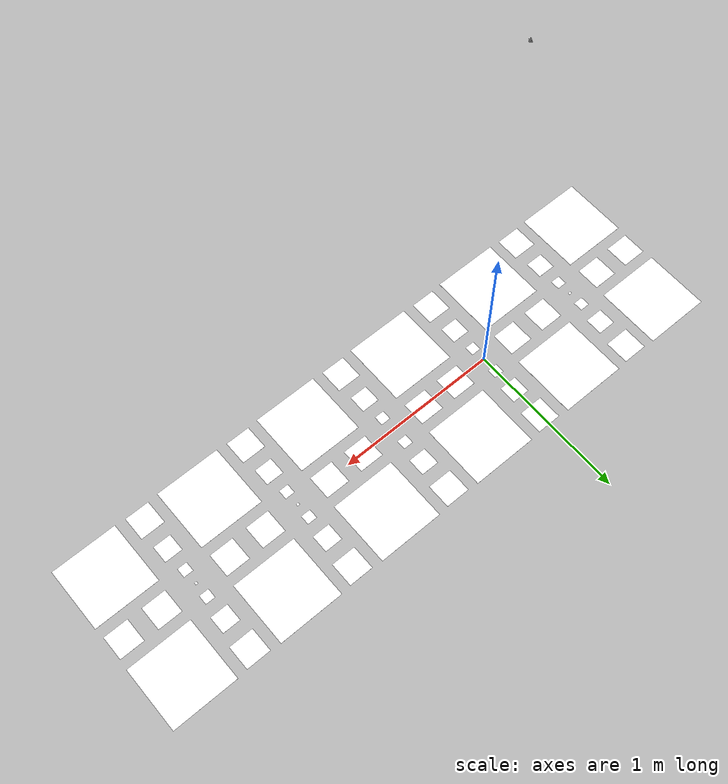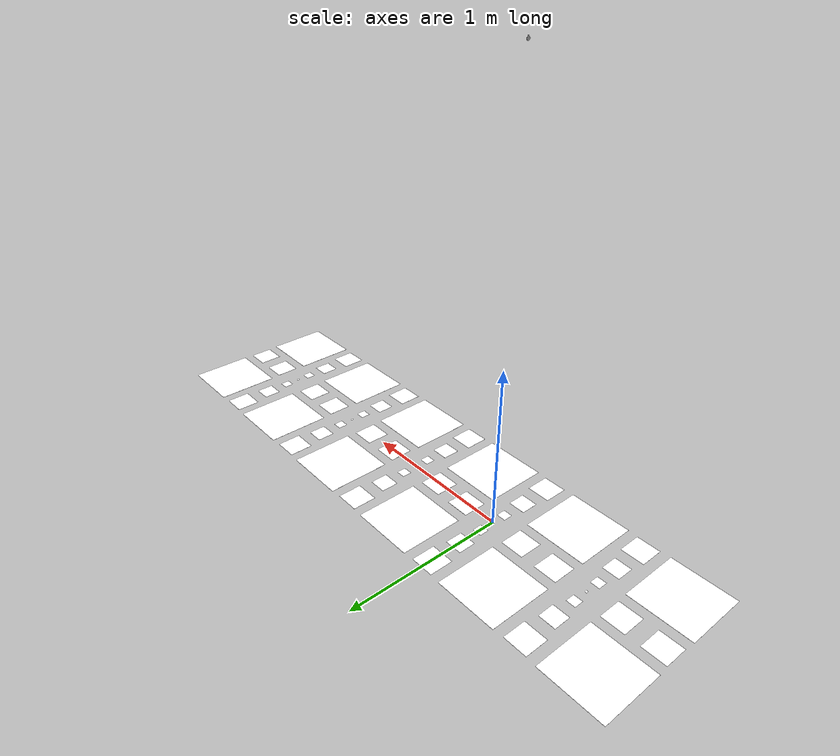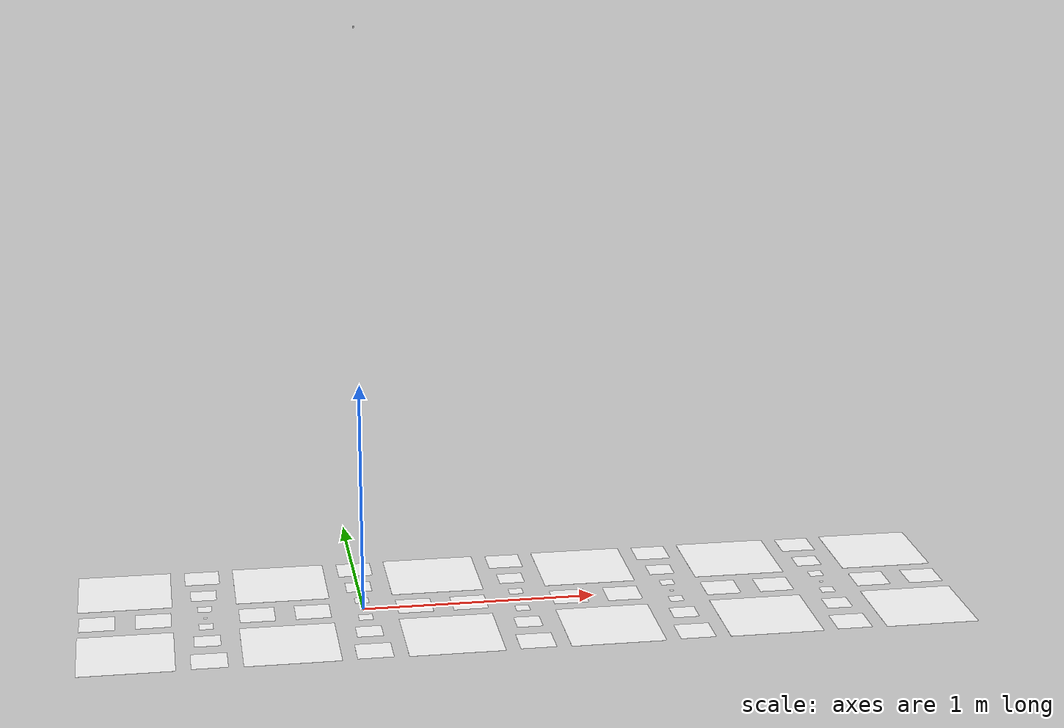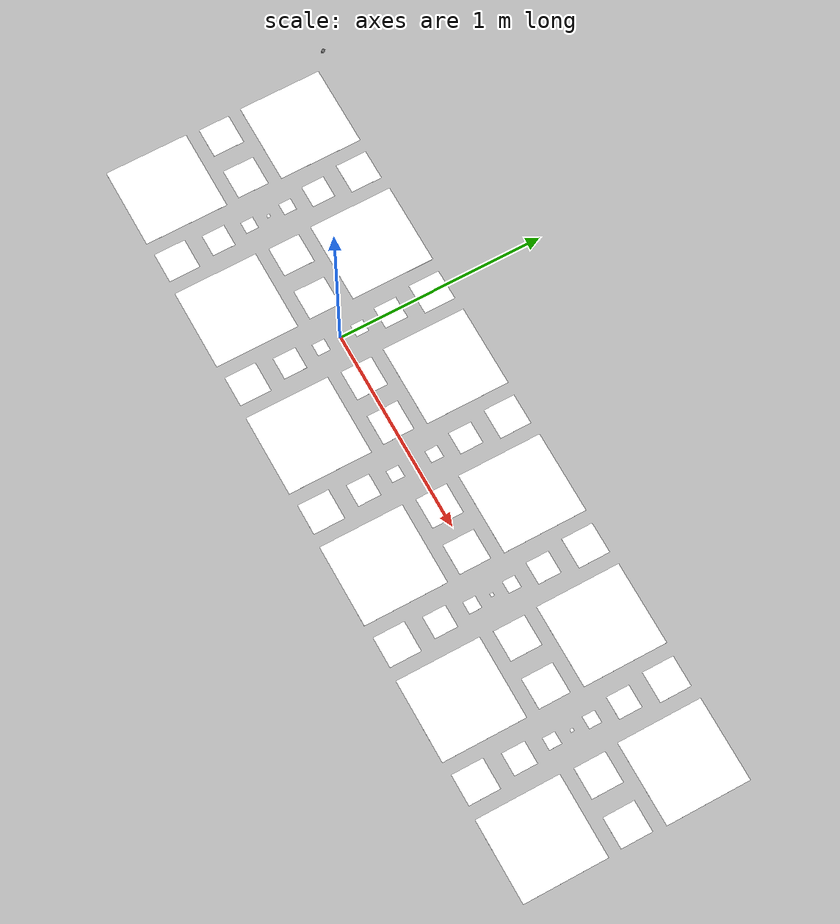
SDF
<?xml version="1.0" encoding="UTF-8"?>
<sdf version="1.9">
  <world name="orange_pi_camera_aruco_test">
    <plugin name="gz::sim::systems::Physics"
            filename="gz-sim-physics-system"/>
    <plugin name="gz::sim::systems::UserCommands"
            filename="gz-sim-user-commands-system"/>
    <plugin name="gz::sim::systems::SceneBroadcaster"
            filename="gz-sim-scene-broadcaster-system"/>
    <plugin name="gz::sim::systems::Sensors"
            filename="gz-sim-sensors-system">
      <render_engine>ogre2</render_engine>
    </plugin>

    <physics type="dart">
      <max_step_size>0.004</max_step_size>
      <real_time_factor>1.0</real_time_factor>
      <real_time_update_rate>250</real_time_update_rate>
    </physics>
    <gravity>0 0 -9.8</gravity>
    <scene>
      <grid>false</grid>
      <ambient>0.4 0.4 0.4 1</ambient>
      <background>0.7 0.7 0.7 1</background>
      <shadows>false</shadows>
    </scene>

    <light name="sun" type="directional">
      <pose>0 0 10 0 0 0</pose>
      <cast_shadows>false</cast_shadows>
      <intensity>1</intensity>
      <direction>0.001 0.625 -0.78</direction>
      <diffuse>0.904 0.904 0.904 1</diffuse>
      <specular>0.271 0.271 0.271 1</specular>
    </light>

    <include>
      <uri>model://obrik_aruco_map_4x4</uri>
    </include>

    <include>
      <uri>model://orange_pi_camera</uri>
      <name>orange_pi_camera_test</name>
      <!-- The camera model looks along local +Z. Roll 180 degrees makes it
           look vertically down at the marker map from 2.5 m. -->
      <pose>0 0 2.5 3.141592653589793 0 0</pose>
      <static>true</static>
    </include>
  </world>
</sdf>

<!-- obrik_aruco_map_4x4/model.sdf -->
<sdf version="1.9">
  <model name="obrik_aruco_map_4x4">
    <static>true</static>
    <link name="link">
        <visual name="marker_1">
          <pose>0.336700 0.336700 0.001000 0.000000 -0.000000 0.000000</pose>
          <cast_shadows>false</cast_shadows>
          <geometry>
            <plane>
              <normal>0 0 1</normal>
              <size>0.400000 0.400000</size>
            </plane>
          </geometry>
          <material>
            <diffuse>1 1 1 1</diffuse>
            <specular>0.1 0.1 0.1 1</specular>
            <pbr>
              <metal>
                <albedo_map>model://obrik_aruco_map_4x4/materials/textures/aruco_1.png</albedo_map>
                <emissive_map>model://obrik_aruco_map_4x4/materials/textures/aruco_1.png</emissive_map>
              </metal>
            </pbr>
          </material>
        </visual>
        <visual name="marker_2">
          <pose>-0.336700 -0.336700 0.001000 0.000000 -0.000000 0.000000</pose>
          <cast_shadows>false</cast_shadows>
          <geometry>
            <plane>
              <normal>0 0 1</normal>
              <size>0.400000 0.400000</size>
            </plane>
          </geometry>
          <material>
            <diffuse>1 1 1 1</diffuse>
            <specular>0.1 0.1 0.1 1</specular>
            <pbr>
              <metal>
                <albedo_map>model://obrik_aruco_map_4x4/materials/textures/aruco_2.png</albedo_map>
                <emissive_map>model://obrik_aruco_map_4x4/materials/textures/aruco_2.png</emissive_map>
              </metal>
            </pbr>
          </material>
        </visual>
        <visual name="marker_3">
          <pose>-0.336700 0.336700 0.001000 0.000000 -0.000000 0.000000</pose>
          <cast_shadows>false</cast_shadows>
          <geometry>
            <plane>
              <normal>0 0 1</normal>
              <size>0.400000 0.400000</size>
            </plane>
          </geometry>
          <material>
            <diffuse>1 1 1 1</diffuse>
            <specular>0.1 0.1 0.1 1</specular>
            <pbr>
              <metal>
                <albedo_map>model://obrik_aruco_map_4x4/materials/textures/aruco_3.png</albedo_map>
                <emissive_map>model://obrik_aruco_map_4x4/materials/textures/aruco_3.png</emissive_map>
              </metal>
            </pbr>
          </material>
        </visual>
        <visual name="marker_4">
          <pose>0.336700 -0.336700 0.001000 0.000000 -0.000000 0.000000</pose>
          <cast_shadows>false</cast_shadows>
          <geometry>
            <plane>
              <normal>0 0 1</normal>
              <size>0.400000 0.400000</size>
            </plane>
          </geometry>
          <material>
            <diffuse>1 1 1 1</diffuse>
            <specular>0.1 0.1 0.1 1</specular>
            <pbr>
              <metal>
                <albedo_map>model://obrik_aruco_map_4x4/materials/textures/aruco_4.png</albedo_map>
                <emissive_map>model://obrik_aruco_map_4x4/materials/textures/aruco_4.png</emissive_map>
              </metal>
            </pbr>
          </material>
        </visual>
        <visual name="marker_5">
          <pose>0.000000 0.095100 0.001000 0.000000 -0.000000 0.000000</pose>
          <cast_shadows>false</cast_shadows>
          <geometry>
            <plane>
              <normal>0 0 1</normal>
              <size>0.060000 0.060000</size>
            </plane>
          </geometry>
          <material>
            <diffuse>1 1 1 1</diffuse>
            <specular>0.1 0.1 0.1 1</specular>
            <pbr>
              <metal>
                <albedo_map>model://obrik_aruco_map_4x4/materials/textures/aruco_5.png</albedo_map>
                <emissive_map>model://obrik_aruco_map_4x4/materials/textures/aruco_5.png</emissive_map>
              </metal>
            </pbr>
          </material>
        </visual>
        <visual name="marker_6">
          <pose>0.000000 -0.095100 0.001000 0.000000 -0.000000 0.000000</pose>
          <cast_shadows>false</cast_shadows>
          <geometry>
            <plane>
              <normal>0 0 1</normal>
              <size>0.060000 0.060000</size>
            </plane>
          </geometry>
          <material>
            <diffuse>1 1 1 1</diffuse>
            <specular>0.1 0.1 0.1 1</specular>
            <pbr>
              <metal>
                <albedo_map>model://obrik_aruco_map_4x4/materials/textures/aruco_6.png</albedo_map>
                <emissive_map>model://obrik_aruco_map_4x4/materials/textures/aruco_6.png</emissive_map>
              </metal>
            </pbr>
          </material>
        </visual>
        <visual name="marker_7">
          <pose>0.000000 0.249500 0.001000 0.000000 -0.000000 0.000000</pose>
          <cast_shadows>false</cast_shadows>
          <geometry>
            <plane>
              <normal>0 0 1</normal>
              <size>0.110000 0.110000</size>
            </plane>
          </geometry>
          <material>
            <diffuse>1 1 1 1</diffuse>
            <specular>0.1 0.1 0.1 1</specular>
            <pbr>
              <metal>
                <albedo_map>model://obrik_aruco_map_4x4/materials/textures/aruco_7.png</albedo_map>
                <emissive_map>model://obrik_aruco_map_4x4/materials/textures/aruco_7.png</emissive_map>
              </metal>
            </pbr>
          </material>
        </visual>
        <visual name="marker_8">
          <pose>0.000000 -0.249500 0.001000 0.000000 -0.000000 0.000000</pose>
          <cast_shadows>false</cast_shadows>
          <geometry>
            <plane>
              <normal>0 0 1</normal>
              <size>0.110000 0.110000</size>
            </plane>
          </geometry>
          <material>
            <diffuse>1 1 1 1</diffuse>
            <specular>0.1 0.1 0.1 1</specular>
            <pbr>
              <metal>
                <albedo_map>model://obrik_aruco_map_4x4/materials/textures/aruco_8.png</albedo_map>
                <emissive_map>model://obrik_aruco_map_4x4/materials/textures/aruco_8.png</emissive_map>
              </metal>
            </pbr>
          </material>
        </visual>
        <visual name="marker_9">
          <pose>0.000000 0.455000 0.001000 0.000000 -0.000000 0.000000</pose>
          <cast_shadows>false</cast_shadows>
          <geometry>
            <plane>
              <normal>0 0 1</normal>
              <size>0.150000 0.150000</size>
            </plane>
          </geometry>
          <material>
            <diffuse>1 1 1 1</diffuse>
            <specular>0.1 0.1 0.1 1</specular>
            <pbr>
              <metal>
                <albedo_map>model://obrik_aruco_map_4x4/materials/textures/aruco_9.png</albedo_map>
                <emissive_map>model://obrik_aruco_map_4x4/materials/textures/aruco_9.png</emissive_map>
              </metal>
            </pbr>
          </material>
        </visual>
        <visual name="marker_10">
          <pose>0.000000 -0.455000 0.001000 0.000000 -0.000000 0.000000</pose>
          <cast_shadows>false</cast_shadows>
          <geometry>
            <plane>
              <normal>0 0 1</normal>
              <size>0.150000 0.150000</size>
            </plane>
          </geometry>
          <material>
            <diffuse>1 1 1 1</diffuse>
            <specular>0.1 0.1 0.1 1</specular>
            <pbr>
              <metal>
                <albedo_map>model://obrik_aruco_map_4x4/materials/textures/aruco_10.png</albedo_map>
                <emissive_map>model://obrik_aruco_map_4x4/materials/textures/aruco_10.png</emissive_map>
              </metal>
            </pbr>
          </material>
        </visual>
        <visual name="marker_11">
          <pose>0.455000 0.000000 0.001000 0.000000 -0.000000 0.000000</pose>
          <cast_shadows>false</cast_shadows>
          <geometry>
            <plane>
              <normal>0 0 1</normal>
              <size>0.150000 0.150000</size>
            </plane>
          </geometry>
          <material>
            <diffuse>1 1 1 1</diffuse>
            <specular>0.1 0.1 0.1 1</specular>
            <pbr>
              <metal>
                <albedo_map>model://obrik_aruco_map_4x4/materials/textures/aruco_11.png</albedo_map>
                <emissive_map>model://obrik_aruco_map_4x4/materials/textures/aruco_11.png</emissive_map>
              </metal>
            </pbr>
          </material>
        </visual>
        <visual name="marker_12">
          <pose>0.218400 0.000000 0.001000 0.000000 -0.000000 0.000000</pose>
          <cast_shadows>false</cast_shadows>
          <geometry>
            <plane>
              <normal>0 0 1</normal>
              <size>0.150000 0.150000</size>
            </plane>
          </geometry>
          <material>
            <diffuse>1 1 1 1</diffuse>
            <specular>0.1 0.1 0.1 1</specular>
            <pbr>
              <metal>
                <albedo_map>model://obrik_aruco_map_4x4/materials/textures/aruco_12.png</albedo_map>
                <emissive_map>model://obrik_aruco_map_4x4/materials/textures/aruco_12.png</emissive_map>
              </metal>
            </pbr>
          </material>
        </visual>
        <visual name="marker_13">
          <pose>-0.455000 0.000000 0.001000 0.000000 -0.000000 0.000000</pose>
          <cast_shadows>false</cast_shadows>
          <geometry>
            <plane>
              <normal>0 0 1</normal>
              <size>0.150000 0.150000</size>
            </plane>
          </geometry>
          <material>
            <diffuse>1 1 1 1</diffuse>
            <specular>0.1 0.1 0.1 1</specular>
            <pbr>
              <metal>
                <albedo_map>model://obrik_aruco_map_4x4/materials/textures/aruco_13.png</albedo_map>
                <emissive_map>model://obrik_aruco_map_4x4/materials/textures/aruco_13.png</emissive_map>
              </metal>
            </pbr>
          </material>
        </visual>
        <visual name="marker_14">
          <pose>-0.218400 0.000000 0.001000 0.000000 -0.000000 0.000000</pose>
          <cast_shadows>false</cast_shadows>
          <geometry>
            <plane>
              <normal>0 0 1</normal>
              <size>0.150000 0.150000</size>
            </plane>
          </geometry>
          <material>
            <diffuse>1 1 1 1</diffuse>
            <specular>0.1 0.1 0.1 1</specular>
            <pbr>
              <metal>
                <albedo_map>model://obrik_aruco_map_4x4/materials/textures/aruco_14.png</albedo_map>
                <emissive_map>model://obrik_aruco_map_4x4/materials/textures/aruco_14.png</emissive_map>
              </metal>
            </pbr>
          </material>
        </visual>
        <visual name="marker_15">
          <pose>0.000000 0.000000 0.001000 0.000000 -0.000000 0.000000</pose>
          <cast_shadows>false</cast_shadows>
          <geometry>
            <plane>
              <normal>0 0 1</normal>
              <size>0.015000 0.015000</size>
            </plane>
          </geometry>
          <material>
            <diffuse>1 1 1 1</diffuse>
            <specular>0.1 0.1 0.1 1</specular>
            <pbr>
              <metal>
                <albedo_map>model://obrik_aruco_map_4x4/materials/textures/aruco_15.png</albedo_map>
                <emissive_map>model://obrik_aruco_map_4x4/materials/textures/aruco_15.png</emissive_map>
              </metal>
            </pbr>
          </material>
        </visual>
        <visual name="marker_16">
          <pose>1.010100 0.336700 0.001000 0.000000 -0.000000 0.000000</pose>
          <cast_shadows>false</cast_shadows>
          <geometry>
            <plane>
              <normal>0 0 1</normal>
              <size>0.400000 0.400000</size>
            </plane>
          </geometry>
          <material>
            <diffuse>1 1 1 1</diffuse>
            <specular>0.1 0.1 0.1 1</specular>
            <pbr>
              <metal>
                <albedo_map>model://obrik_aruco_map_4x4/materials/textures/aruco_16.png</albedo_map>
                <emissive_map>model://obrik_aruco_map_4x4/materials/textures/aruco_16.png</emissive_map>
              </metal>
            </pbr>
          </material>
        </visual>
        <visual name="marker_18">
          <pose>1.010100 -0.336700 0.001000 0.000000 -0.000000 0.000000</pose>
          <cast_shadows>false</cast_shadows>
          <geometry>
            <plane>
              <normal>0 0 1</normal>
              <size>0.400000 0.400000</size>
            </plane>
          </geometry>
          <material>
            <diffuse>1 1 1 1</diffuse>
            <specular>0.1 0.1 0.1 1</specular>
            <pbr>
              <metal>
                <albedo_map>model://obrik_aruco_map_4x4/materials/textures/aruco_18.png</albedo_map>
                <emissive_map>model://obrik_aruco_map_4x4/materials/textures/aruco_18.png</emissive_map>
              </metal>
            </pbr>
          </material>
        </visual>
        <visual name="marker_20">
          <pose>0.673400 0.095100 0.001000 0.000000 -0.000000 0.000000</pose>
          <cast_shadows>false</cast_shadows>
          <geometry>
            <plane>
              <normal>0 0 1</normal>
              <size>0.060000 0.060000</size>
            </plane>
          </geometry>
          <material>
            <diffuse>1 1 1 1</diffuse>
            <specular>0.1 0.1 0.1 1</specular>
            <pbr>
              <metal>
                <albedo_map>model://obrik_aruco_map_4x4/materials/textures/aruco_20.png</albedo_map>
                <emissive_map>model://obrik_aruco_map_4x4/materials/textures/aruco_20.png</emissive_map>
              </metal>
            </pbr>
          </material>
        </visual>
        <visual name="marker_21">
          <pose>0.673400 -0.095100 0.001000 0.000000 -0.000000 0.000000</pose>
          <cast_shadows>false</cast_shadows>
          <geometry>
            <plane>
              <normal>0 0 1</normal>
              <size>0.060000 0.060000</size>
            </plane>
          </geometry>
          <material>
            <diffuse>1 1 1 1</diffuse>
            <specular>0.1 0.1 0.1 1</specular>
            <pbr>
              <metal>
                <albedo_map>model://obrik_aruco_map_4x4/materials/textures/aruco_21.png</albedo_map>
                <emissive_map>model://obrik_aruco_map_4x4/materials/textures/aruco_21.png</emissive_map>
              </metal>
            </pbr>
          </material>
        </visual>
        <visual name="marker_22">
          <pose>0.673400 0.249500 0.001000 0.000000 -0.000000 0.000000</pose>
          <cast_shadows>false</cast_shadows>
          <geometry>
            <plane>
              <normal>0 0 1</normal>
              <size>0.110000 0.110000</size>
            </plane>
          </geometry>
          <material>
            <diffuse>1 1 1 1</diffuse>
            <specular>0.1 0.1 0.1 1</specular>
            <pbr>
              <metal>
                <albedo_map>model://obrik_aruco_map_4x4/materials/textures/aruco_22.png</albedo_map>
                <emissive_map>model://obrik_aruco_map_4x4/materials/textures/aruco_22.png</emissive_map>
              </metal>
            </pbr>
          </material>
        </visual>
        <visual name="marker_23">
          <pose>0.673400 -0.249500 0.001000 0.000000 -0.000000 0.000000</pose>
          <cast_shadows>false</cast_shadows>
          <geometry>
            <plane>
              <normal>0 0 1</normal>
              <size>0.110000 0.110000</size>
            </plane>
          </geometry>
          <material>
            <diffuse>1 1 1 1</diffuse>
            <specular>0.1 0.1 0.1 1</specular>
            <pbr>
              <metal>
                <albedo_map>model://obrik_aruco_map_4x4/materials/textures/aruco_23.png</albedo_map>
                <emissive_map>model://obrik_aruco_map_4x4/materials/textures/aruco_23.png</emissive_map>
              </metal>
            </pbr>
          </material>
        </visual>
        <visual name="marker_24">
          <pose>0.673400 0.455000 0.001000 0.000000 -0.000000 0.000000</pose>
          <cast_shadows>false</cast_shadows>
          <geometry>
            <plane>
              <normal>0 0 1</normal>
              <size>0.150000 0.150000</size>
            </plane>
          </geometry>
          <material>
            <diffuse>1 1 1 1</diffuse>
            <specular>0.1 0.1 0.1 1</specular>
            <pbr>
              <metal>
                <albedo_map>model://obrik_aruco_map_4x4/materials/textures/aruco_24.png</albedo_map>
                <emissive_map>model://obrik_aruco_map_4x4/materials/textures/aruco_24.png</emissive_map>
              </metal>
            </pbr>
          </material>
        </visual>
        <visual name="marker_25">
          <pose>0.673400 -0.455000 0.001000 0.000000 -0.000000 0.000000</pose>
          <cast_shadows>false</cast_shadows>
          <geometry>
            <plane>
              <normal>0 0 1</normal>
              <size>0.150000 0.150000</size>
            </plane>
          </geometry>
          <material>
            <diffuse>1 1 1 1</diffuse>
            <specular>0.1 0.1 0.1 1</specular>
            <pbr>
              <metal>
                <albedo_map>model://obrik_aruco_map_4x4/materials/textures/aruco_25.png</albedo_map>
                <emissive_map>model://obrik_aruco_map_4x4/materials/textures/aruco_25.png</emissive_map>
              </metal>
            </pbr>
          </material>
        </visual>
        <visual name="marker_26">
          <pose>1.128400 0.000000 0.001000 0.000000 -0.000000 0.000000</pose>
          <cast_shadows>false</cast_shadows>
          <geometry>
            <plane>
              <normal>0 0 1</normal>
              <size>0.150000 0.150000</size>
            </plane>
          </geometry>
          <material>
            <diffuse>1 1 1 1</diffuse>
            <specular>0.1 0.1 0.1 1</specular>
            <pbr>
              <metal>
                <albedo_map>model://obrik_aruco_map_4x4/materials/textures/aruco_26.png</albedo_map>
                <emissive_map>model://obrik_aruco_map_4x4/materials/textures/aruco_26.png</emissive_map>
              </metal>
            </pbr>
          </material>
        </visual>
        <visual name="marker_27">
          <pose>0.891800 0.000000 0.001000 0.000000 -0.000000 0.000000</pose>
          <cast_shadows>false</cast_shadows>
          <geometry>
            <plane>
              <normal>0 0 1</normal>
              <size>0.150000 0.150000</size>
            </plane>
          </geometry>
          <material>
            <diffuse>1 1 1 1</diffuse>
            <specular>0.1 0.1 0.1 1</specular>
            <pbr>
              <metal>
                <albedo_map>model://obrik_aruco_map_4x4/materials/textures/aruco_27.png</albedo_map>
                <emissive_map>model://obrik_aruco_map_4x4/materials/textures/aruco_27.png</emissive_map>
              </metal>
            </pbr>
          </material>
        </visual>
        <visual name="marker_28">
          <pose>0.673400 0.000000 0.001000 0.000000 -0.000000 0.000000</pose>
          <cast_shadows>false</cast_shadows>
          <geometry>
            <plane>
              <normal>0 0 1</normal>
              <size>0.015000 0.015000</size>
            </plane>
          </geometry>
          <material>
            <diffuse>1 1 1 1</diffuse>
            <specular>0.1 0.1 0.1 1</specular>
            <pbr>
              <metal>
                <albedo_map>model://obrik_aruco_map_4x4/materials/textures/aruco_28.png</albedo_map>
                <emissive_map>model://obrik_aruco_map_4x4/materials/textures/aruco_28.png</emissive_map>
              </metal>
            </pbr>
          </material>
        </visual>
        <visual name="marker_29">
          <pose>-1.010100 0.336700 0.001000 0.000000 -0.000000 0.000000</pose>
          <cast_shadows>false</cast_shadows>
          <geometry>
            <plane>
              <normal>0 0 1</normal>
              <size>0.400000 0.400000</size>
            </plane>
          </geometry>
          <material>
            <diffuse>1 1 1 1</diffuse>
            <specular>0.1 0.1 0.1 1</specular>
            <pbr>
              <metal>
                <albedo_map>model://obrik_aruco_map_4x4/materials/textures/aruco_29.png</albedo_map>
                <emissive_map>model://obrik_aruco_map_4x4/materials/textures/aruco_29.png</emissive_map>
              </metal>
            </pbr>
          </material>
        </visual>
        <visual name="marker_94">
          <pose>-1.010100 -0.336700 0.001000 0.000000 -0.000000 0.000000</pose>
          <cast_shadows>false</cast_shadows>
          <geometry>
            <plane>
              <normal>0 0 1</normal>
              <size>0.400000 0.400000</size>
            </plane>
          </geometry>
          <material>
            <diffuse>1 1 1 1</diffuse>
            <specular>0.1 0.1 0.1 1</specular>
            <pbr>
              <metal>
                <albedo_map>model://obrik_aruco_map_4x4/materials/textures/aruco_94.png</albedo_map>
                <emissive_map>model://obrik_aruco_map_4x4/materials/textures/aruco_94.png</emissive_map>
              </metal>
            </pbr>
          </material>
        </visual>
        <visual name="marker_31">
          <pose>-0.673400 0.095100 0.001000 0.000000 -0.000000 0.000000</pose>
          <cast_shadows>false</cast_shadows>
          <geometry>
            <plane>
              <normal>0 0 1</normal>
              <size>0.060000 0.060000</size>
            </plane>
          </geometry>
          <material>
            <diffuse>1 1 1 1</diffuse>
            <specular>0.1 0.1 0.1 1</specular>
            <pbr>
              <metal>
                <albedo_map>model://obrik_aruco_map_4x4/materials/textures/aruco_31.png</albedo_map>
                <emissive_map>model://obrik_aruco_map_4x4/materials/textures/aruco_31.png</emissive_map>
              </metal>
            </pbr>
          </material>
        </visual>
        <visual name="marker_32">
          <pose>-0.673400 -0.095100 0.001000 0.000000 -0.000000 0.000000</pose>
          <cast_shadows>false</cast_shadows>
          <geometry>
            <plane>
              <normal>0 0 1</normal>
              <size>0.060000 0.060000</size>
            </plane>
          </geometry>
          <material>
            <diffuse>1 1 1 1</diffuse>
            <specular>0.1 0.1 0.1 1</specular>
            <pbr>
              <metal>
                <albedo_map>model://obrik_aruco_map_4x4/materials/textures/aruco_32.png</albedo_map>
                <emissive_map>model://obrik_aruco_map_4x4/materials/textures/aruco_32.png</emissive_map>
              </metal>
            </pbr>
          </material>
        </visual>
        <visual name="marker_33">
          <pose>-0.673400 0.249500 0.001000 0.000000 -0.000000 0.000000</pose>
          <cast_shadows>false</cast_shadows>
          <geometry>
            <plane>
              <normal>0 0 1</normal>
              <size>0.110000 0.110000</size>
            </plane>
          </geometry>
          <material>
            <diffuse>1 1 1 1</diffuse>
            <specular>0.1 0.1 0.1 1</specular>
            <pbr>
              <metal>
                <albedo_map>model://obrik_aruco_map_4x4/materials/textures/aruco_33.png</albedo_map>
                <emissive_map>model://obrik_aruco_map_4x4/materials/textures/aruco_33.png</emissive_map>
              </metal>
            </pbr>
          </material>
        </visual>
        <visual name="marker_34">
          <pose>-0.673400 -0.249500 0.001000 0.000000 -0.000000 0.000000</pose>
          <cast_shadows>false</cast_shadows>
          <geometry>
            <plane>
              <normal>0 0 1</normal>
              <size>0.110000 0.110000</size>
            </plane>
          </geometry>
          <material>
            <diffuse>1 1 1 1</diffuse>
            <specular>0.1 0.1 0.1 1</specular>
            <pbr>
              <metal>
                <albedo_map>model://obrik_aruco_map_4x4/materials/textures/aruco_34.png</albedo_map>
                <emissive_map>model://obrik_aruco_map_4x4/materials/textures/aruco_34.png</emissive_map>
              </metal>
            </pbr>
          </material>
        </visual>
        <visual name="marker_35">
          <pose>-0.673400 0.455000 0.001000 0.000000 -0.000000 0.000000</pose>
          <cast_shadows>false</cast_shadows>
          <geometry>
            <plane>
              <normal>0 0 1</normal>
              <size>0.150000 0.150000</size>
            </plane>
          </geometry>
          <material>
            <diffuse>1 1 1 1</diffuse>
            <specular>0.1 0.1 0.1 1</specular>
            <pbr>
              <metal>
                <albedo_map>model://obrik_aruco_map_4x4/materials/textures/aruco_35.png</albedo_map>
                <emissive_map>model://obrik_aruco_map_4x4/materials/textures/aruco_35.png</emissive_map>
              </metal>
            </pbr>
          </material>
        </visual>
        <visual name="marker_36">
          <pose>-0.673400 -0.455000 0.001000 0.000000 -0.000000 0.000000</pose>
          <cast_shadows>false</cast_shadows>
          <geometry>
            <plane>
              <normal>0 0 1</normal>
              <size>0.150000 0.150000</size>
            </plane>
          </geometry>
          <material>
            <diffuse>1 1 1 1</diffuse>
            <specular>0.1 0.1 0.1 1</specular>
            <pbr>
              <metal>
                <albedo_map>model://obrik_aruco_map_4x4/materials/textures/aruco_36.png</albedo_map>
                <emissive_map>model://obrik_aruco_map_4x4/materials/textures/aruco_36.png</emissive_map>
              </metal>
            </pbr>
          </material>
        </visual>
        <visual name="marker_92">
          <pose>-1.128400 0.000000 0.001000 0.000000 -0.000000 0.000000</pose>
          <cast_shadows>false</cast_shadows>
          <geometry>
            <plane>
              <normal>0 0 1</normal>
              <size>0.150000 0.150000</size>
            </plane>
          </geometry>
          <material>
            <diffuse>1 1 1 1</diffuse>
            <specular>0.1 0.1 0.1 1</specular>
            <pbr>
              <metal>
                <albedo_map>model://obrik_aruco_map_4x4/materials/textures/aruco_92.png</albedo_map>
                <emissive_map>model://obrik_aruco_map_4x4/materials/textures/aruco_92.png</emissive_map>
              </metal>
            </pbr>
          </material>
        </visual>
        <visual name="marker_38">
          <pose>-0.891800 0.000000 0.001000 0.000000 -0.000000 0.000000</pose>
          <cast_shadows>false</cast_shadows>
          <geometry>
            <plane>
              <normal>0 0 1</normal>
              <size>0.150000 0.150000</size>
            </plane>
          </geometry>
          <material>
            <diffuse>1 1 1 1</diffuse>
            <specular>0.1 0.1 0.1 1</specular>
            <pbr>
              <metal>
                <albedo_map>model://obrik_aruco_map_4x4/materials/textures/aruco_38.png</albedo_map>
                <emissive_map>model://obrik_aruco_map_4x4/materials/textures/aruco_38.png</emissive_map>
              </metal>
            </pbr>
          </material>
        </visual>
        <visual name="marker_39">
          <pose>-0.673400 0.000000 0.001000 0.000000 -0.000000 0.000000</pose>
          <cast_shadows>false</cast_shadows>
          <geometry>
            <plane>
              <normal>0 0 1</normal>
              <size>0.015000 0.015000</size>
            </plane>
          </geometry>
          <material>
            <diffuse>1 1 1 1</diffuse>
            <specular>0.1 0.1 0.1 1</specular>
            <pbr>
              <metal>
                <albedo_map>model://obrik_aruco_map_4x4/materials/textures/aruco_39.png</albedo_map>
                <emissive_map>model://obrik_aruco_map_4x4/materials/textures/aruco_39.png</emissive_map>
              </metal>
            </pbr>
          </material>
        </visual>
        <visual name="marker_40">
          <pose>1.683500 0.336700 0.001000 0.000000 -0.000000 0.000000</pose>
          <cast_shadows>false</cast_shadows>
          <geometry>
            <plane>
              <normal>0 0 1</normal>
              <size>0.400000 0.400000</size>
            </plane>
          </geometry>
          <material>
            <diffuse>1 1 1 1</diffuse>
            <specular>0.1 0.1 0.1 1</specular>
            <pbr>
              <metal>
                <albedo_map>model://obrik_aruco_map_4x4/materials/textures/aruco_40.png</albedo_map>
                <emissive_map>model://obrik_aruco_map_4x4/materials/textures/aruco_40.png</emissive_map>
              </metal>
            </pbr>
          </material>
        </visual>
        <visual name="marker_97">
          <pose>1.683500 -0.336700 0.001000 0.000000 -0.000000 0.000000</pose>
          <cast_shadows>false</cast_shadows>
          <geometry>
            <plane>
              <normal>0 0 1</normal>
              <size>0.400000 0.400000</size>
            </plane>
          </geometry>
          <material>
            <diffuse>1 1 1 1</diffuse>
            <specular>0.1 0.1 0.1 1</specular>
            <pbr>
              <metal>
                <albedo_map>model://obrik_aruco_map_4x4/materials/textures/aruco_97.png</albedo_map>
                <emissive_map>model://obrik_aruco_map_4x4/materials/textures/aruco_97.png</emissive_map>
              </metal>
            </pbr>
          </material>
        </visual>
        <visual name="marker_42">
          <pose>1.346800 0.095100 0.001000 0.000000 -0.000000 0.000000</pose>
          <cast_shadows>false</cast_shadows>
          <geometry>
            <plane>
              <normal>0 0 1</normal>
              <size>0.060000 0.060000</size>
            </plane>
          </geometry>
          <material>
            <diffuse>1 1 1 1</diffuse>
            <specular>0.1 0.1 0.1 1</specular>
            <pbr>
              <metal>
                <albedo_map>model://obrik_aruco_map_4x4/materials/textures/aruco_42.png</albedo_map>
                <emissive_map>model://obrik_aruco_map_4x4/materials/textures/aruco_42.png</emissive_map>
              </metal>
            </pbr>
          </material>
        </visual>
        <visual name="marker_43">
          <pose>1.346800 -0.095100 0.001000 0.000000 -0.000000 0.000000</pose>
          <cast_shadows>false</cast_shadows>
          <geometry>
            <plane>
              <normal>0 0 1</normal>
              <size>0.060000 0.060000</size>
            </plane>
          </geometry>
          <material>
            <diffuse>1 1 1 1</diffuse>
            <specular>0.1 0.1 0.1 1</specular>
            <pbr>
              <metal>
                <albedo_map>model://obrik_aruco_map_4x4/materials/textures/aruco_43.png</albedo_map>
                <emissive_map>model://obrik_aruco_map_4x4/materials/textures/aruco_43.png</emissive_map>
              </metal>
            </pbr>
          </material>
        </visual>
        <visual name="marker_44">
          <pose>1.346800 0.249500 0.001000 0.000000 -0.000000 0.000000</pose>
          <cast_shadows>false</cast_shadows>
          <geometry>
            <plane>
              <normal>0 0 1</normal>
              <size>0.110000 0.110000</size>
            </plane>
          </geometry>
          <material>
            <diffuse>1 1 1 1</diffuse>
            <specular>0.1 0.1 0.1 1</specular>
            <pbr>
              <metal>
                <albedo_map>model://obrik_aruco_map_4x4/materials/textures/aruco_44.png</albedo_map>
                <emissive_map>model://obrik_aruco_map_4x4/materials/textures/aruco_44.png</emissive_map>
              </metal>
            </pbr>
          </material>
        </visual>
        <visual name="marker_45">
          <pose>1.346800 -0.249500 0.001000 0.000000 -0.000000 0.000000</pose>
          <cast_shadows>false</cast_shadows>
          <geometry>
            <plane>
              <normal>0 0 1</normal>
              <size>0.110000 0.110000</size>
            </plane>
          </geometry>
          <material>
            <diffuse>1 1 1 1</diffuse>
            <specular>0.1 0.1 0.1 1</specular>
            <pbr>
              <metal>
                <albedo_map>model://obrik_aruco_map_4x4/materials/textures/aruco_45.png</albedo_map>
                <emissive_map>model://obrik_aruco_map_4x4/materials/textures/aruco_45.png</emissive_map>
              </metal>
            </pbr>
          </material>
        </visual>
        <visual name="marker_46">
          <pose>1.346800 0.455000 0.001000 0.000000 -0.000000 0.000000</pose>
          <cast_shadows>false</cast_shadows>
          <geometry>
            <plane>
              <normal>0 0 1</normal>
              <size>0.150000 0.150000</size>
            </plane>
          </geometry>
          <material>
            <diffuse>1 1 1 1</diffuse>
            <specular>0.1 0.1 0.1 1</specular>
            <pbr>
              <metal>
                <albedo_map>model://obrik_aruco_map_4x4/materials/textures/aruco_46.png</albedo_map>
                <emissive_map>model://obrik_aruco_map_4x4/materials/textures/aruco_46.png</emissive_map>
              </metal>
            </pbr>
          </material>
        </visual>
        <visual name="marker_47">
          <pose>1.346800 -0.455000 0.001000 0.000000 -0.000000 0.000000</pose>
          <cast_shadows>false</cast_shadows>
          <geometry>
            <plane>
              <normal>0 0 1</normal>
              <size>0.150000 0.150000</size>
            </plane>
          </geometry>
          <material>
            <diffuse>1 1 1 1</diffuse>
            <specular>0.1 0.1 0.1 1</specular>
            <pbr>
              <metal>
                <albedo_map>model://obrik_aruco_map_4x4/materials/textures/aruco_47.png</albedo_map>
                <emissive_map>model://obrik_aruco_map_4x4/materials/textures/aruco_47.png</emissive_map>
              </metal>
            </pbr>
          </material>
        </visual>
        <visual name="marker_48">
          <pose>1.565200 0.000000 0.001000 0.000000 -0.000000 0.000000</pose>
          <cast_shadows>false</cast_shadows>
          <geometry>
            <plane>
              <normal>0 0 1</normal>
              <size>0.150000 0.150000</size>
            </plane>
          </geometry>
          <material>
            <diffuse>1 1 1 1</diffuse>
            <specular>0.1 0.1 0.1 1</specular>
            <pbr>
              <metal>
                <albedo_map>model://obrik_aruco_map_4x4/materials/textures/aruco_48.png</albedo_map>
                <emissive_map>model://obrik_aruco_map_4x4/materials/textures/aruco_48.png</emissive_map>
              </metal>
            </pbr>
          </material>
        </visual>
        <visual name="marker_49">
          <pose>1.801800 0.000000 0.001000 0.000000 -0.000000 0.000000</pose>
          <cast_shadows>false</cast_shadows>
          <geometry>
            <plane>
              <normal>0 0 1</normal>
              <size>0.150000 0.150000</size>
            </plane>
          </geometry>
          <material>
            <diffuse>1 1 1 1</diffuse>
            <specular>0.1 0.1 0.1 1</specular>
            <pbr>
              <metal>
                <albedo_map>model://obrik_aruco_map_4x4/materials/textures/aruco_49.png</albedo_map>
                <emissive_map>model://obrik_aruco_map_4x4/materials/textures/aruco_49.png</emissive_map>
              </metal>
            </pbr>
          </material>
        </visual>
        <visual name="marker_50">
          <pose>1.346800 0.000000 0.001000 0.000000 -0.000000 0.000000</pose>
          <cast_shadows>false</cast_shadows>
          <geometry>
            <plane>
              <normal>0 0 1</normal>
              <size>0.015000 0.015000</size>
            </plane>
          </geometry>
          <material>
            <diffuse>1 1 1 1</diffuse>
            <specular>0.1 0.1 0.1 1</specular>
            <pbr>
              <metal>
                <albedo_map>model://obrik_aruco_map_4x4/materials/textures/aruco_50.png</albedo_map>
                <emissive_map>model://obrik_aruco_map_4x4/materials/textures/aruco_50.png</emissive_map>
              </metal>
            </pbr>
          </material>
        </visual>
        <visual name="marker_51">
          <pose>2.356900 0.336700 0.001000 0.000000 -0.000000 0.000000</pose>
          <cast_shadows>false</cast_shadows>
          <geometry>
            <plane>
              <normal>0 0 1</normal>
              <size>0.400000 0.400000</size>
            </plane>
          </geometry>
          <material>
            <diffuse>1 1 1 1</diffuse>
            <specular>0.1 0.1 0.1 1</specular>
            <pbr>
              <metal>
                <albedo_map>model://obrik_aruco_map_4x4/materials/textures/aruco_51.png</albedo_map>
                <emissive_map>model://obrik_aruco_map_4x4/materials/textures/aruco_51.png</emissive_map>
              </metal>
            </pbr>
          </material>
        </visual>
        <visual name="marker_52">
          <pose>2.356900 -0.336700 0.001000 0.000000 -0.000000 0.000000</pose>
          <cast_shadows>false</cast_shadows>
          <geometry>
            <plane>
              <normal>0 0 1</normal>
              <size>0.400000 0.400000</size>
            </plane>
          </geometry>
          <material>
            <diffuse>1 1 1 1</diffuse>
            <specular>0.1 0.1 0.1 1</specular>
            <pbr>
              <metal>
                <albedo_map>model://obrik_aruco_map_4x4/materials/textures/aruco_52.png</albedo_map>
                <emissive_map>model://obrik_aruco_map_4x4/materials/textures/aruco_52.png</emissive_map>
              </metal>
            </pbr>
          </material>
        </visual>
        <visual name="marker_53">
          <pose>2.020200 0.095100 0.001000 0.000000 -0.000000 0.000000</pose>
          <cast_shadows>false</cast_shadows>
          <geometry>
            <plane>
              <normal>0 0 1</normal>
              <size>0.060000 0.060000</size>
            </plane>
          </geometry>
          <material>
            <diffuse>1 1 1 1</diffuse>
            <specular>0.1 0.1 0.1 1</specular>
            <pbr>
              <metal>
                <albedo_map>model://obrik_aruco_map_4x4/materials/textures/aruco_53.png</albedo_map>
                <emissive_map>model://obrik_aruco_map_4x4/materials/textures/aruco_53.png</emissive_map>
              </metal>
            </pbr>
          </material>
        </visual>
        <visual name="marker_54">
          <pose>2.020200 -0.095100 0.001000 0.000000 -0.000000 0.000000</pose>
          <cast_shadows>false</cast_shadows>
          <geometry>
            <plane>
              <normal>0 0 1</normal>
              <size>0.060000 0.060000</size>
            </plane>
          </geometry>
          <material>
            <diffuse>1 1 1 1</diffuse>
            <specular>0.1 0.1 0.1 1</specular>
            <pbr>
              <metal>
                <albedo_map>model://obrik_aruco_map_4x4/materials/textures/aruco_54.png</albedo_map>
                <emissive_map>model://obrik_aruco_map_4x4/materials/textures/aruco_54.png</emissive_map>
              </metal>
            </pbr>
          </material>
        </visual>
        <visual name="marker_55">
          <pose>2.020200 0.249500 0.001000 0.000000 -0.000000 0.000000</pose>
          <cast_shadows>false</cast_shadows>
          <geometry>
            <plane>
              <normal>0 0 1</normal>
              <size>0.110000 0.110000</size>
            </plane>
          </geometry>
          <material>
            <diffuse>1 1 1 1</diffuse>
            <specular>0.1 0.1 0.1 1</specular>
            <pbr>
              <metal>
                <albedo_map>model://obrik_aruco_map_4x4/materials/textures/aruco_55.png</albedo_map>
                <emissive_map>model://obrik_aruco_map_4x4/materials/textures/aruco_55.png</emissive_map>
              </metal>
            </pbr>
          </material>
        </visual>
        <visual name="marker_56">
          <pose>2.020200 -0.249500 0.001000 0.000000 -0.000000 0.000000</pose>
          <cast_shadows>false</cast_shadows>
          <geometry>
            <plane>
              <normal>0 0 1</normal>
              <size>0.110000 0.110000</size>
            </plane>
          </geometry>
          <material>
            <diffuse>1 1 1 1</diffuse>
            <specular>0.1 0.1 0.1 1</specular>
            <pbr>
              <metal>
                <albedo_map>model://obrik_aruco_map_4x4/materials/textures/aruco_56.png</albedo_map>
                <emissive_map>model://obrik_aruco_map_4x4/materials/textures/aruco_56.png</emissive_map>
              </metal>
            </pbr>
          </material>
        </visual>
        <visual name="marker_57">
          <pose>2.020200 0.455000 0.001000 0.000000 -0.000000 0.000000</pose>
          <cast_shadows>false</cast_shadows>
          <geometry>
            <plane>
              <normal>0 0 1</normal>
              <size>0.150000 0.150000</size>
            </plane>
          </geometry>
          <material>
            <diffuse>1 1 1 1</diffuse>
            <specular>0.1 0.1 0.1 1</specular>
            <pbr>
              <metal>
                <albedo_map>model://obrik_aruco_map_4x4/materials/textures/aruco_57.png</albedo_map>
                <emissive_map>model://obrik_aruco_map_4x4/materials/textures/aruco_57.png</emissive_map>
              </metal>
            </pbr>
          </material>
        </visual>
        <visual name="marker_58">
          <pose>2.020200 -0.455000 0.001000 0.000000 -0.000000 0.000000</pose>
          <cast_shadows>false</cast_shadows>
          <geometry>
            <plane>
              <normal>0 0 1</normal>
              <size>0.150000 0.150000</size>
            </plane>
          </geometry>
          <material>
            <diffuse>1 1 1 1</diffuse>
            <specular>0.1 0.1 0.1 1</specular>
            <pbr>
              <metal>
                <albedo_map>model://obrik_aruco_map_4x4/materials/textures/aruco_58.png</albedo_map>
                <emissive_map>model://obrik_aruco_map_4x4/materials/textures/aruco_58.png</emissive_map>
              </metal>
            </pbr>
          </material>
        </visual>
        <visual name="marker_59">
          <pose>2.238600 0.000000 0.001000 0.000000 -0.000000 0.000000</pose>
          <cast_shadows>false</cast_shadows>
          <geometry>
            <plane>
              <normal>0 0 1</normal>
              <size>0.150000 0.150000</size>
            </plane>
          </geometry>
          <material>
            <diffuse>1 1 1 1</diffuse>
            <specular>0.1 0.1 0.1 1</specular>
            <pbr>
              <metal>
                <albedo_map>model://obrik_aruco_map_4x4/materials/textures/aruco_59.png</albedo_map>
                <emissive_map>model://obrik_aruco_map_4x4/materials/textures/aruco_59.png</emissive_map>
              </metal>
            </pbr>
          </material>
        </visual>
        <visual name="marker_96">
          <pose>2.475200 0.000000 0.001000 0.000000 -0.000000 0.000000</pose>
          <cast_shadows>false</cast_shadows>
          <geometry>
            <plane>
              <normal>0 0 1</normal>
              <size>0.150000 0.150000</size>
            </plane>
          </geometry>
          <material>
            <diffuse>1 1 1 1</diffuse>
            <specular>0.1 0.1 0.1 1</specular>
            <pbr>
              <metal>
                <albedo_map>model://obrik_aruco_map_4x4/materials/textures/aruco_96.png</albedo_map>
                <emissive_map>model://obrik_aruco_map_4x4/materials/textures/aruco_96.png</emissive_map>
              </metal>
            </pbr>
          </material>
        </visual>
        <visual name="marker_61">
          <pose>2.020200 0.000000 0.001000 0.000000 -0.000000 0.000000</pose>
          <cast_shadows>false</cast_shadows>
          <geometry>
            <plane>
              <normal>0 0 1</normal>
              <size>0.015000 0.015000</size>
            </plane>
          </geometry>
          <material>
            <diffuse>1 1 1 1</diffuse>
            <specular>0.1 0.1 0.1 1</specular>
            <pbr>
              <metal>
                <albedo_map>model://obrik_aruco_map_4x4/materials/textures/aruco_61.png</albedo_map>
                <emissive_map>model://obrik_aruco_map_4x4/materials/textures/aruco_61.png</emissive_map>
              </metal>
            </pbr>
          </material>
        </visual>
    </link>
  </model>
</sdf>

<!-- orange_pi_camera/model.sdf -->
<sdf version="1.9">
  <model name="orange_pi_camera">
    <self_collide>false</self_collide>
    <static>false</static>
    <link name="orange_pi_camera_link">
      <inertial>
        <mass>0.01</mass>
        <inertia>
          <ixx>0.000001</ixx>
          <iyy>0.000001</iyy>
          <izz>0.000001</izz>
          <ixy>0</ixy>
          <ixz>0</ixz>
          <iyz>0</iyz>
        </inertia>
      </inertial>

      <visual name="orange_pi_camera_visual">
        <geometry>
          <mesh>
            <!-- The normalized export is already in metres. -->
            <scale>1 1 1</scale>
            <uri>model://orange_pi_camera/meshes/orange_pi_camera.obj</uri>
          </mesh>
        </geometry>
        <!-- Gazebo Sim does not reliably apply the OBJ's MTL diffuse colour.
             Keep the supplied model's neutral-grey finish explicit here. -->
        <material>
          <ambient>0.627451 0.627451 0.627451 1</ambient>
          <diffuse>0.627451 0.627451 0.627451 1</diffuse>
          <specular>1 1 1 1</specular>
        </material>
      </visual>

      <sensor name="imager" type="camera">
        <!-- The normalized model uses link-local +X as its physical lens axis,
             which matches Gazebo's camera-forward convention. The optical
             centre is 6 mm forward of the model origin. -->
        <pose>0.006 0 0 0 0 0</pose>
        <camera>
          <horizontal_fov>1.354811094812</horizontal_fov>
          <image>
            <width>1408</width>
            <height>792</height>
            <format>R8G8B8</format>
          </image>
          <clip>
            <!-- Official focusing range starts at 0.1 m. Gazebo needs a
                 finite far plane, so 50 m matches the indoor simulation. -->
            <near>0.1</near>
            <far>50</far>
          </clip>
        </camera>
        <!-- Activate on the selected Gazebo/ROS subscriber. This keeps the
             unselected camera mode from rendering in parallel. -->
        <always_on>false</always_on>
        <update_rate>30</update_rate>
        <visualize>false</visualize>
      </sensor>

      <sensor name="imager_fullres" type="camera">
        <pose>0.006 0 0 0 0 0</pose>
        <camera>
          <horizontal_fov>1.354811094812</horizontal_fov>
          <image>
            <width>4224</width>
            <height>3136</height>
            <format>R8G8B8</format>
          </image>
          <clip>
            <near>0.1</near>
            <far>50</far>
          </clip>
        </camera>
        <always_on>false</always_on>
        <update_rate>30</update_rate>
        <visualize>false</visualize>
      </sensor>
    </link>
  </model>
</sdf>
